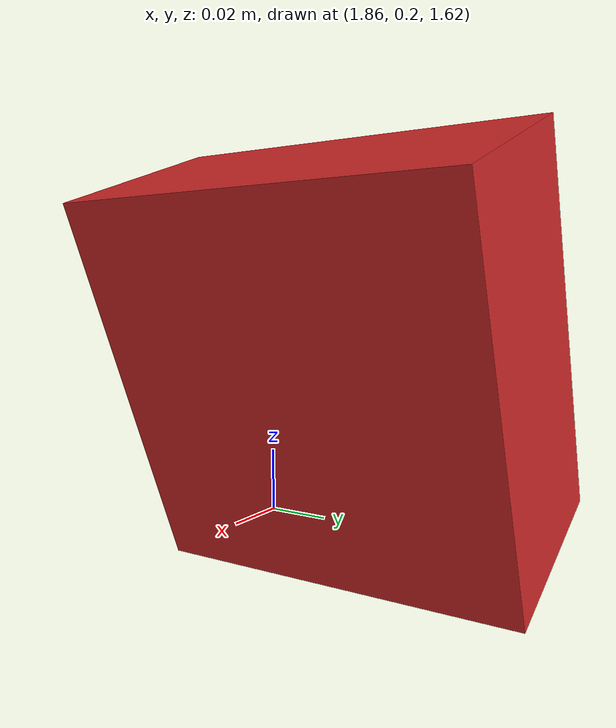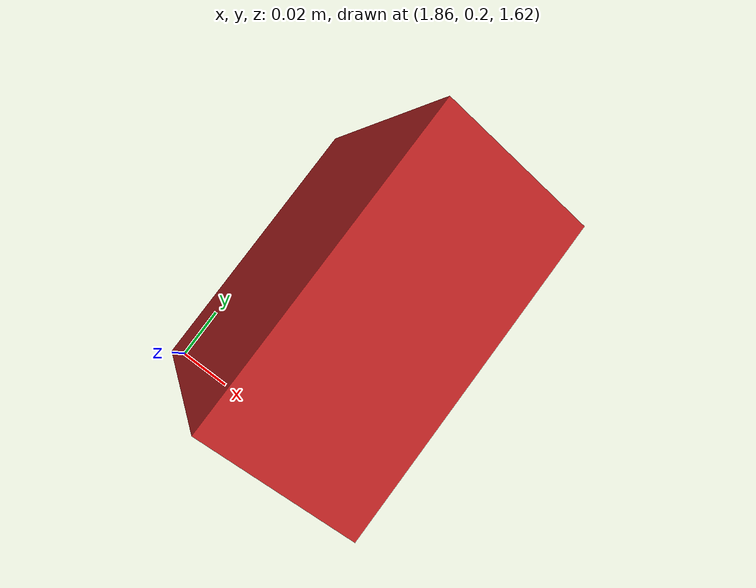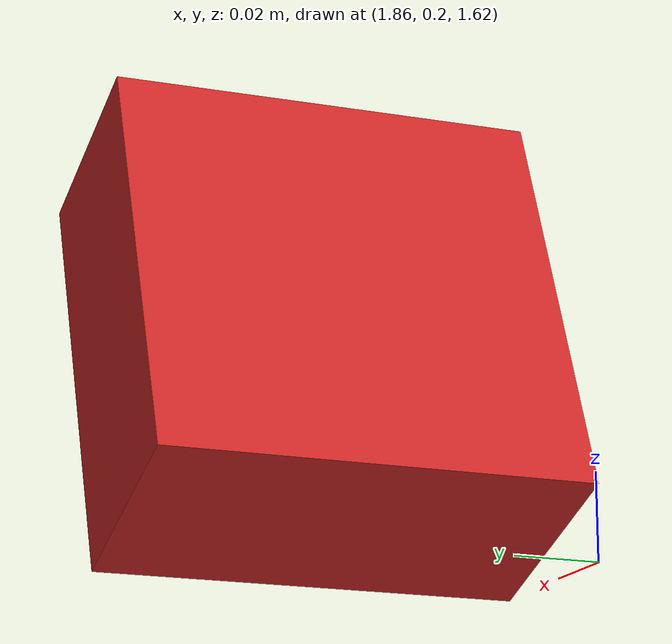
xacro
<?xml version="1.0"?>
<robot xmlns:xacro="http://ros.org/wiki/xacro"
       name="camera" >

  <!-- Include camera description (Hint: look at camera_model.urdf.xacro within the lab08_activity package) -->
  <xacro:include filename="$(find lab08_activity)/urdf/camera_model.xacro" />

  <link name="world" />

  <!-- Link camera with world joint -->
  <joint name="camera_world_joint" type="fixed">
    <parent link="world" />
    <child link = "camera_link" />
    <origin xyz="1.9 0.25 1.675" rpy="0.0 ${pi/2.6} ${pi}" />
  </joint>

</robot>

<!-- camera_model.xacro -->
<robot xmlns:xacro="http://www.ros.org/wiki/xacro">

  <xacro:include filename="$(find lab08_activity)/urdf/camera.gazebo.xacro"/>

 <!-- Camera -->
  <link name="camera_link">
    <collision>
      <origin xyz="0 0 0" rpy="0 0 0"/>
      <geometry>
    <box size="0.1 0.1 0.05"/>
      </geometry>
    </collision>

    <visual>
      <origin xyz="0 0 0" rpy="0 0 0"/>
      <geometry>
    <box size="0.1 0.1 0.05"/>
      </geometry>
      <material name="red"/>
    </visual>

    <inertial>
      <mass value="1e-5" />
      <origin xyz="0 0 0" rpy="0 0 0"/>
      <inertia ixx="1e-6" ixy="0" ixz="0" iyy="1e-6" iyz="0" izz="1e-6" />
    </inertial>
  </link>

</robot>
